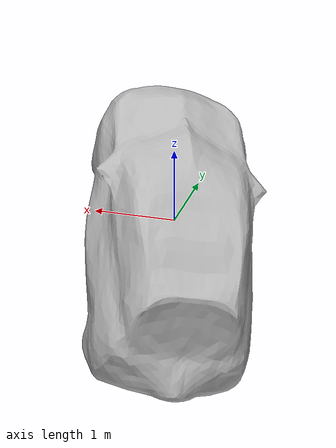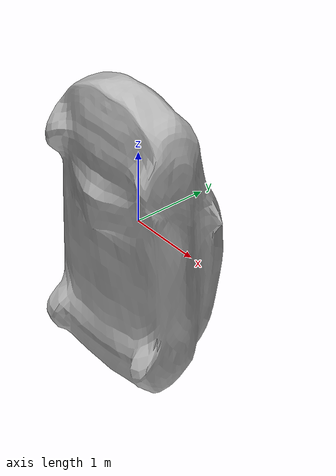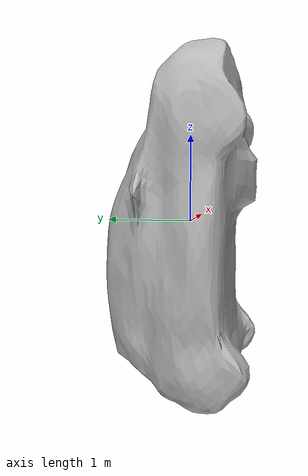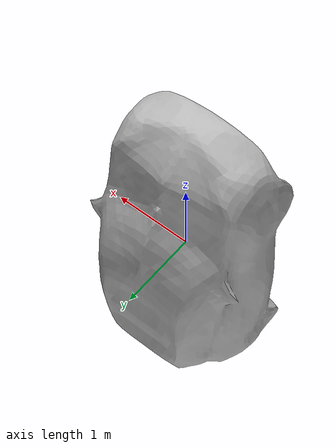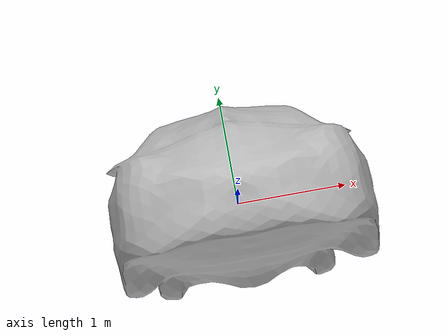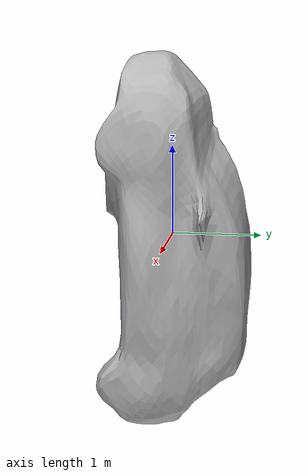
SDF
<?xml version="1.0" ?>
<sdf version="1.6">
  <model name="car">
    <static>true</static>
    <link name="link">
      <collision name="collision">
        <geometry>
          <mesh>
            <scale>2 2 2</scale>
            <uri>model://Temporary/meshes/car.obj</uri>
          </mesh>
        </geometry>
      </collision>
      <visual name="visual">
        <geometry>
          <mesh>
            <scale>2 2 2</scale>
            <uri>model://Temporary/meshes/car.obj</uri>
          </mesh>
        </geometry>
      </visual>
    </link>
  </model>
</sdf>
